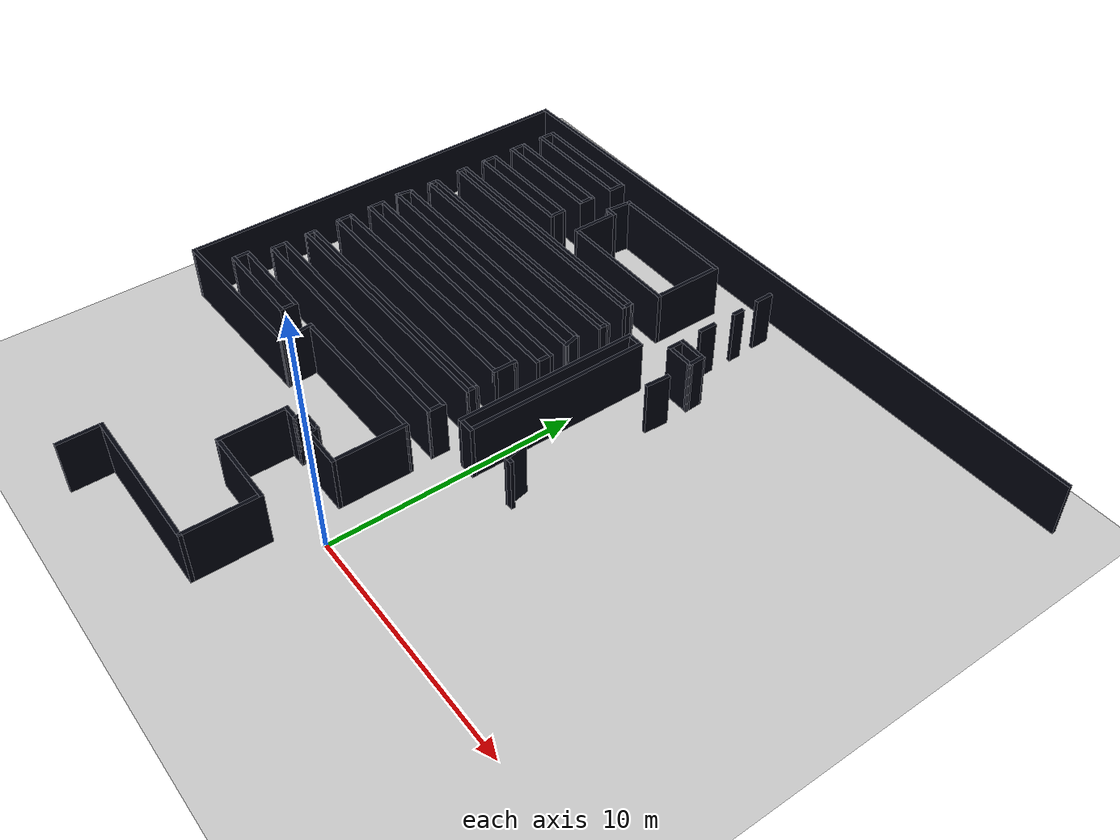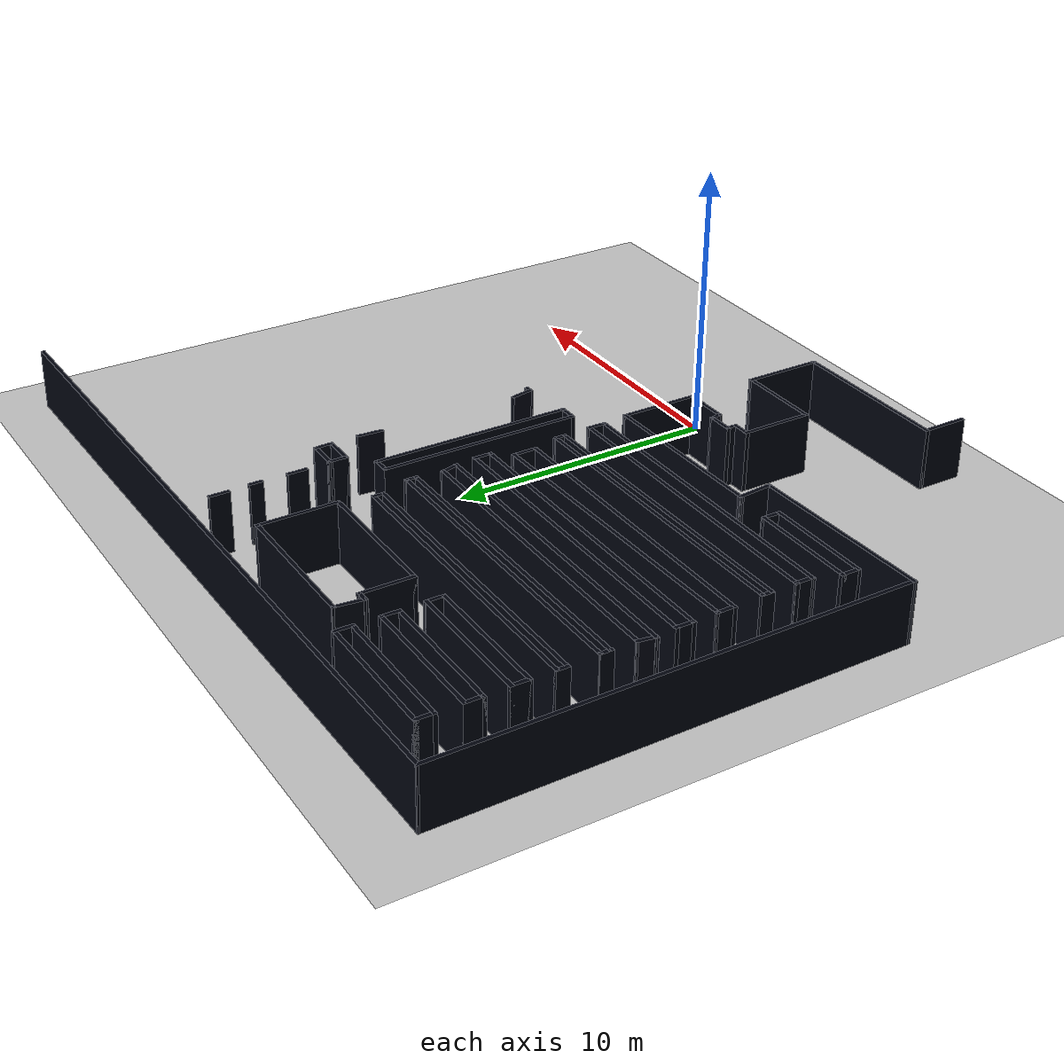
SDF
<sdf version="1.8">
 <world name="CDL_map">
  <model name="ground_plane">
   <static>1</static>
   <link name="link">
    <collision name="collision">
     <geometry><plane><normal>0 0 1</normal><size>100 100</size></plane></geometry>
    </collision>
    <visual name="visual">
     <geometry><plane><normal>0 0 1</normal><size>100 100</size></plane></geometry>
     <material>
      <ambient>0.8 0.8 0.8 1</ambient>
      <diffuse>0.8 0.8 0.8 1</diffuse>
      <specular>0.8 0.8 0.8 1</specular>
     </material>
     <plugin name="__default__" filename="__default__"/>
    </visual>
   </link>
   <plugin name="__default__" filename="__default__"/>
  </model>
  <model name="border">
   <pose>0 0 1 0 0 0</pose>
   <static>true</static>
   <link name="Wall_10">
    <pose>-4.40968 -0.081622 0 0 -0 -1.5708</pose>
    <static>true</static>
    <collision name="Wall_10_Collision"><geometry><box><size>2.75 0.15 2.5</size></box></geometry></collision>
    <visual name="Wall_10_Visual">
     <geometry><box><size>2.75 0.15 2.5</size></box></geometry>
     <material>
      <ambient>0.1 0.1 0.1 1</ambient>
      <diffuse>0 0.01 0.05 1</diffuse>
      <specular>0 0.01 0.05 1</specular>
     </material>
    </visual>
   </link>
   <link name="Wall_100">
    <pose>-12.8016 8.32753 0 0 -0 -1.5708</pose>
    <static>true</static>
    <collision name="Wall_100_Collision"><geometry><box><size>0.75 0.15 2.5</size></box></geometry></collision>
    <visual name="Wall_100_Visual">
     <geometry><box><size>0.75 0.15 2.5</size></box></geometry>
     <material>
      <ambient>0.1 0.1 0.1 1</ambient>
      <diffuse>0 0.01 0.05 1</diffuse>
      <specular>0 0.01 0.05 1</specular>
     </material>
    </visual>
   </link>
   <link name="Wall_101">
    <pose>-7.25164 8.02753 0 0 -0 0</pose>
    <static>true</static>
    <collision name="Wall_101_Collision"><geometry><box><size>11.25 0.15 2.5</size></box></geometry></collision>
    <visual name="Wall_101_Visual">
     <geometry><box><size>11.25 0.15 2.5</size></box></geometry>
     <material>
      <ambient>0.1 0.1 0.1 1</ambient>
      <diffuse>0 0.01 0.05 1</diffuse>
      <specular>0 0.01 0.05 1</specular>
     </material>
    </visual>
   </link>
   <link name="Wall_102">
    <pose>-1.70165 8.45253 0 0 -0 1.5708</pose>
    <static>true</static>
    <collision name="Wall_102_Collision"><geometry><box><size>1 0.15 2.5</size></box></geometry></collision>
    <visual name="Wall_102_Visual">
     <geometry><box><size>1 0.15 2.5</size></box></geometry>
     <material>
      <ambient>0.1 0.1 0.1 1</ambient>
      <diffuse>0 0.01 0.05 1</diffuse>
      <specular>0 0.01 0.05 1</specular>
     </material>
    </visual>
   </link>
   <link name="Wall_103">
    <pose>-7.25164 8.75253 0 0 -0 -3.11907</pose>
    <static>true</static>
    <collision name="Wall_103_Collision"><geometry><box><size>11.2528 0.15 2.5</size></box></geometry></collision>
    <visual name="Wall_103_Visual">
     <geometry><box><size>11.2528 0.15 2.5</size></box></geometry>
     <material>
      <ambient>0.1 0.1 0.1 1</ambient>
      <diffuse>0 0.01 0.05 1</diffuse>
      <specular>0 0.01 0.05 1</specular>
     </material>
    </visual>
   </link>
   <link name="Wall_105">
    <pose>-7.06163 6.98275 0 0 -0 0.010381</pose>
    <static>true</static>
    <collision name="Wall_105_Collision"><geometry><box><size>11.4226 0.15 2.5</size></box></geometry></collision>
    <visual name="Wall_105_Visual">
     <geometry><box><size>11.4226 0.15 2.5</size></box></geometry>
     <material>
      <ambient>0.1 0.1 0.1 1</ambient>
      <diffuse>0 0.01 0.05 1</diffuse>
      <specular>0 0.01 0.05 1</specular>
     </material>
    </visual>
   </link>
   <link name="Wall_106">
    <pose>-1.42564 6.86626 0 0 -0 -1.5708</pose>
    <static>true</static>
    <collision name="Wall_106_Collision"><geometry><box><size>0.5 0.15 2.5</size></box></geometry></collision>
    <visual name="Wall_106_Visual">
     <geometry><box><size>0.5 0.15 2.5</size></box></geometry>
     <material>
      <ambient>0.1 0.1 0.1 1</ambient>
      <diffuse>0 0.01 0.05 1</diffuse>
      <specular>0 0.01 0.05 1</specular>
     </material>
    </visual>
   </link>
   <link name="Wall_107">
    <pose>-7.06163 6.63275 0 0 -0 -3.13121</pose>
    <static>true</static>
    <collision name="Wall_107_Collision"><geometry><box><size>11.4226 0.15 2.5</size></box></geometry></collision>
    <visual name="Wall_107_Visual">
     <geometry><box><size>11.4226 0.15 2.5</size></box></geometry>
     <material>
      <ambient>0.1 0.1 0.1 1</ambient>
      <diffuse>0 0.01 0.05 1</diffuse>
      <specular>0 0.01 0.05 1</specular>
     </material>
    </visual>
   </link>
   <link name="Wall_108">
    <pose>-12.7366 6.74924 0 0 -0 1.5708</pose>
    <static>true</static>
    <collision name="Wall_108_Collision"><geometry><box><size>0.5 0.15 2.5</size></box></geometry></collision>
    <visual name="Wall_108_Visual">
     <geometry><box><size>0.5 0.15 2.5</size></box></geometry>
     <material>
      <ambient>0.1 0.1 0.1 1</ambient>
      <diffuse>0 0.01 0.05 1</diffuse>
      <specular>0 0.01 0.05 1</specular>
     </material>
    </visual>
   </link>
   <link name="Wall_11">
    <pose>-2.85968 -1.38162 0 0 -0 0</pose>
    <static>true</static>
    <collision name="Wall_11_Collision"><geometry><box><size>3.25 0.15 2.5</size></box></geometry></collision>
    <visual name="Wall_11_Visual">
     <geometry><box><size>3.25 0.15 2.5</size></box></geometry>
     <material>
      <ambient>0.1 0.1 0.1 1</ambient>
      <diffuse>0 0.01 0.05 1</diffuse>
      <specular>0 0.01 0.05 1</specular>
     </material>
    </visual>
   </link>
   <link name="Wall_110">
    <pose>-12.7301 5.35002 0 0 -0 -1.59246</pose>
    <static>true</static>
    <collision name="Wall_110_Collision"><geometry><box><size>0.75 0.15 2.5</size></box></geometry></collision>
    <visual name="Wall_110_Visual">
     <geometry><box><size>0.75 0.15 2.5</size></box></geometry>
     <material>
      <ambient>0.1 0.1 0.1 1</ambient>
      <diffuse>0 0.01 0.05 1</diffuse>
      <specular>0 0.01 0.05 1</specular>
     </material>
    </visual>
   </link>
   <link name="Wall_111">
    <pose>-7.06163 5.05002 0 0 -0 0</pose>
    <static>true</static>
    <collision name="Wall_111_Collision"><geometry><box><size>11.5 0.15 2.5</size></box></geometry></collision>
    <visual name="Wall_111_Visual">
     <geometry><box><size>11.5 0.15 2.5</size></box></geometry>
     <material>
      <ambient>0.1 0.1 0.1 1</ambient>
      <diffuse>0 0.01 0.05 1</diffuse>
      <specular>0 0.01 0.05 1</specular>
     </material>
    </visual>
   </link>
   <link name="Wall_112">
    <pose>-1.38013 5.35002 0 0 -0 1.54913</pose>
    <static>true</static>
    <collision name="Wall_112_Collision"><geometry><box><size>0.75 0.15 2.5</size></box></geometry></collision>
    <visual name="Wall_112_Visual">
     <geometry><box><size>0.75 0.15 2.5</size></box></geometry>
     <material>
      <ambient>0.1 0.1 0.1 1</ambient>
      <diffuse>0 0.01 0.05 1</diffuse>
      <specular>0 0.01 0.05 1</specular>
     </material>
    </visual>
   </link>
   <link name="Wall_113">
    <pose>-7.06163 5.65002 0 0 -0 3.14159</pose>
    <static>true</static>
    <collision name="Wall_113_Collision"><geometry><box><size>11.5 0.15 2.5</size></box></geometry></collision>
    <visual name="Wall_113_Visual">
     <geometry><box><size>11.5 0.15 2.5</size></box></geometry>
     <material>
      <ambient>0.1 0.1 0.1 1</ambient>
      <diffuse>0 0.01 0.05 1</diffuse>
      <specular>0 0.01 0.05 1</specular>
     </material>
    </visual>
   </link>
   <link name="Wall_115">
    <pose>-11.1416 4.1499 0 0 -0 0</pose>
    <static>true</static>
    <collision name="Wall_115_Collision"><geometry><box><size>4 0.15 2.5</size></box></geometry></collision>
    <visual name="Wall_115_Visual">
     <geometry><box><size>4 0.15 2.5</size></box></geometry>
     <material>
      <ambient>0.1 0.1 0.1 1</ambient>
      <diffuse>0 0.01 0.05 1</diffuse>
      <specular>0 0.01 0.05 1</specular>
     </material>
    </visual>
   </link>
   <link name="Wall_116">
    <pose>-9.21656 3.8499 0 0 -0 -1.5708</pose>
    <static>true</static>
    <collision name="Wall_116_Collision"><geometry><box><size>0.75 0.15 2.5</size></box></geometry></collision>
    <visual name="Wall_116_Visual">
     <geometry><box><size>0.75 0.15 2.5</size></box></geometry>
     <material>
      <ambient>0.1 0.1 0.1 1</ambient>
      <diffuse>0 0.01 0.05 1</diffuse>
      <specular>0 0.01 0.05 1</specular>
     </material>
    </visual>
   </link>
   <link name="Wall_117">
    <pose>-11.1416 3.5499 0 0 -0 3.14159</pose>
    <static>true</static>
    <collision name="Wall_117_Collision"><geometry><box><size>4 0.15 2.5</size></box></geometry></collision>
    <visual name="Wall_117_Visual">
     <geometry><box><size>4 0.15 2.5</size></box></geometry>
     <material>
      <ambient>0.1 0.1 0.1 1</ambient>
      <diffuse>0 0.01 0.05 1</diffuse>
      <specular>0 0.01 0.05 1</specular>
     </material>
    </visual>
   </link>
   <link name="Wall_118">
    <pose>-13.0666 3.8499 0 0 -0 1.5708</pose>
    <static>true</static>
    <collision name="Wall_118_Collision"><geometry><box><size>0.75 0.15 2.5</size></box></geometry></collision>
    <visual name="Wall_118_Visual">
     <geometry><box><size>0.75 0.15 2.5</size></box></geometry>
     <material>
      <ambient>0.1 0.1 0.1 1</ambient>
      <diffuse>0 0.01 0.05 1</diffuse>
      <specular>0 0.01 0.05 1</specular>
     </material>
    </visual>
   </link>
   <link name="Wall_12">
    <pose>-1.30968 -2.80662 0 0 -0 -1.5708</pose>
    <static>true</static>
    <collision name="Wall_12_Collision"><geometry><box><size>3 0.15 2.5</size></box></geometry></collision>
    <visual name="Wall_12_Visual">
     <geometry><box><size>3 0.15 2.5</size></box></geometry>
     <material>
      <ambient>0.1 0.1 0.1 1</ambient>
      <diffuse>0 0.01 0.05 1</diffuse>
      <specular>0 0.01 0.05 1</specular>
     </material>
    </visual>
   </link>
   <link name="Wall_120">
    <pose>-0.079952 13.0712 0 0 -0 0</pose>
    <static>true</static>
    <collision name="Wall_120_Collision"><geometry><box><size>0.75 0.15 2.5</size></box></geometry></collision>
    <visual name="Wall_120_Visual">
     <geometry><box><size>0.75 0.15 2.5</size></box></geometry>
     <material>
      <ambient>0.1 0.1 0.1 1</ambient>
      <diffuse>0 0.01 0.05 1</diffuse>
      <specular>0 0.01 0.05 1</specular>
     </material>
    </visual>
   </link>
   <link name="Wall_121">
    <pose>0.220048 9.39615 0 0 -0 -1.5708</pose>
    <static>true</static>
    <collision name="Wall_121_Collision"><geometry><box><size>7.5 0.15 2.5</size></box></geometry></collision>
    <visual name="Wall_121_Visual">
     <geometry><box><size>7.5 0.15 2.5</size></box></geometry>
     <material>
      <ambient>0.1 0.1 0.1 1</ambient>
      <diffuse>0 0.01 0.05 1</diffuse>
      <specular>0 0.01 0.05 1</specular>
     </material>
    </visual>
   </link>
   <link name="Wall_122">
    <pose>-0.079952 5.72115 0 0 -0 3.14159</pose>
    <static>true</static>
    <collision name="Wall_122_Collision"><geometry><box><size>0.75 0.15 2.5</size></box></geometry></collision>
    <visual name="Wall_122_Visual">
     <geometry><box><size>0.75 0.15 2.5</size></box></geometry>
     <material>
      <ambient>0.1 0.1 0.1 1</ambient>
      <diffuse>0 0.01 0.05 1</diffuse>
      <specular>0 0.01 0.05 1</specular>
     </material>
    </visual>
   </link>
   <link name="Wall_123">
    <pose>-0.379952 9.39615 0 0 -0 1.5708</pose>
    <static>true</static>
    <collision name="Wall_123_Collision"><geometry><box><size>7.5 0.15 2.5</size></box></geometry></collision>
    <visual name="Wall_123_Visual">
     <geometry><box><size>7.5 0.15 2.5</size></box></geometry>
     <material>
      <ambient>0.1 0.1 0.1 1</ambient>
      <diffuse>0 0.01 0.05 1</diffuse>
      <specular>0 0.01 0.05 1</specular>
     </material>
    </visual>
   </link>
   <link name="Wall_128">
    <pose>0.922962 18.4772 0 0 -0 -1.5708</pose>
    <static>true</static>
    <collision name="Wall_128_Collision"><geometry><box><size>0.75 0.15 2.5</size></box></geometry></collision>
    <visual name="Wall_128_Visual">
     <geometry><box><size>0.75 0.15 2.5</size></box></geometry>
     <material>
      <ambient>0.1 0.1 0.1 1</ambient>
      <diffuse>0 0.01 0.05 1</diffuse>
      <specular>0 0.01 0.05 1</specular>
     </material>
    </visual>
   </link>
   <link name="Wall_13">
    <pose>-4.35968 -4.23162 0 0 -0 3.14159</pose>
    <static>true</static>
    <collision name="Wall_13_Collision"><geometry><box><size>6.25 0.15 2.5</size></box></geometry></collision>
    <visual name="Wall_13_Visual">
     <geometry><box><size>6.25 0.15 2.5</size></box></geometry>
     <material>
      <ambient>0.1 0.1 0.1 1</ambient>
      <diffuse>0 0.01 0.05 1</diffuse>
      <specular>0 0.01 0.05 1</specular>
     </material>
    </visual>
   </link>
   <link name="Wall_133">
    <pose>0.974678 17.1489 0 0 -0 1.5708</pose>
    <static>true</static>
    <collision name="Wall_133_Collision"><geometry><box><size>0.5 0.15 2.5</size></box></geometry></collision>
    <visual name="Wall_133_Visual">
     <geometry><box><size>0.5 0.15 2.5</size></box></geometry>
     <material>
      <ambient>0.1 0.1 0.1 1</ambient>
      <diffuse>0 0.01 0.05 1</diffuse>
      <specular>0 0.01 0.05 1</specular>
     </material>
    </visual>
   </link>
   <link name="Wall_135">
    <pose>0.961749 15.6534 0 0 -0 -1.5708</pose>
    <static>true</static>
    <collision name="Wall_135_Collision"><geometry><box><size>0.75 0.15 2.5</size></box></geometry></collision>
    <visual name="Wall_135_Visual">
     <geometry><box><size>0.75 0.15 2.5</size></box></geometry>
     <material>
      <ambient>0.1 0.1 0.1 1</ambient>
      <diffuse>0 0.01 0.05 1</diffuse>
      <specular>0 0.01 0.05 1</specular>
     </material>
    </visual>
   </link>
   <link name="Wall_14">
    <pose>-7.40968 -5.03162 0 0 -0 -1.5708</pose>
    <static>true</static>
    <collision name="Wall_14_Collision"><geometry><box><size>1.75 0.15 2.5</size></box></geometry></collision>
    <visual name="Wall_14_Visual">
     <geometry><box><size>1.75 0.15 2.5</size></box></geometry>
     <material>
      <ambient>0.1 0.1 0.1 1</ambient>
      <diffuse>0 0.01 0.05 1</diffuse>
      <specular>0 0.01 0.05 1</specular>
     </material>
    </visual>
   </link>
   <link name="Wall_144">
    <pose>1.01346 14.1278 0 0 -0 -1.5708</pose>
    <static>true</static>
    <collision name="Wall_144_Collision"><geometry><box><size>0.75 0.15 2.5</size></box></geometry></collision>
    <visual name="Wall_144_Visual">
     <geometry><box><size>0.75 0.15 2.5</size></box></geometry>
     <material>
      <ambient>0.1 0.1 0.1 1</ambient>
      <diffuse>0 0.01 0.05 1</diffuse>
      <specular>0 0.01 0.05 1</specular>
     </material>
    </visual>
   </link>
   <link name="Wall_145">
    <pose>1.56346 13.8278 0 0 -0 0</pose>
    <static>true</static>
    <collision name="Wall_145_Collision"><geometry><box><size>1.25 0.15 2.5</size></box></geometry></collision>
    <visual name="Wall_145_Visual">
     <geometry><box><size>1.25 0.15 2.5</size></box></geometry>
     <material>
      <ambient>0.1 0.1 0.1 1</ambient>
      <diffuse>0 0.01 0.05 1</diffuse>
      <specular>0 0.01 0.05 1</specular>
     </material>
    </visual>
   </link>
   <link name="Wall_146">
    <pose>2.10152 14.1251 0 0 -0 1.61096</pose>
    <static>true</static>
    <collision name="Wall_146_Collision">
     <geometry><box><size>0.744967 0.15 2.5</size></box></geometry>
    </collision>
    <visual name="Wall_146_Visual">
     <geometry><box><size>0.744967 0.15 2.5</size></box></geometry>
     <material>
      <ambient>0.1 0.1 0.1 1</ambient>
      <diffuse>0 0.01 0.05 1</diffuse>
      <specular>0 0.01 0.05 1</specular>
     </material>
    </visual>
   </link>
   <link name="Wall_147">
    <pose>1.55152 14.4251 0 0 -0 3.13647</pose>
    <static>true</static>
    <collision name="Wall_147_Collision"><geometry><box><size>1.22617 0.15 2.5</size></box></geometry></collision>
    <visual name="Wall_147_Visual">
     <geometry><box><size>1.22617 0.15 2.5</size></box></geometry>
     <material>
      <ambient>0.1 0.1 0.1 1</ambient>
      <diffuse>0 0.01 0.05 1</diffuse>
      <specular>0 0.01 0.05 1</specular>
     </material>
    </visual>
   </link>
   <link name="Wall_180">
    <pose>2.09499 12.3578 0 0 -0 -1.63109</pose>
    <static>true</static>
    <collision name="Wall_180_Collision">
     <geometry><box><size>0.996511 0.15 2.5</size></box></geometry>
    </collision>
    <visual name="Wall_180_Visual">
     <geometry><box><size>0.996511 0.15 2.5</size></box></geometry>
     <material>
      <ambient>0.1 0.1 0.1 1</ambient>
      <diffuse>0 0.01 0.05 1</diffuse>
      <specular>0 0.01 0.05 1</specular>
     </material>
    </visual>
   </link>
   <link name="Wall_2">
    <pose>-7.72041 3.37557 0 0 -0 1.66712</pose>
    <static>true</static>
    <collision name="Wall_2_Collision"><geometry><box><size>1.38679 0.15 2.5</size></box></geometry></collision>
    <visual name="Wall_2_Visual">
     <geometry><box><size>1.38679 0.15 2.5</size></box></geometry>
     <material>
      <ambient>0.1 0.1 0.1 1</ambient>
      <diffuse>0 0.01 0.05 1</diffuse>
      <specular>0 0.01 0.05 1</specular>
     </material>
    </visual>
   </link>
   <link name="Wall_217">
    <pose>2.1398 5.95702 0 0 -0 -3.13063</pose>
    <static>true</static>
    <collision name="Wall_217_Collision">
     <geometry><box><size>0.339127 0.15 2.5</size></box></geometry>
    </collision>
    <visual name="Wall_217_Visual">
     <geometry><box><size>0.339127 0.15 2.5</size></box></geometry>
     <material>
      <ambient>0.1 0.1 0.1 1</ambient>
      <diffuse>0 0.01 0.05 1</diffuse>
      <specular>0 0.01 0.05 1</specular>
     </material>
    </visual>
   </link>
   <link name="Wall_218">
    <pose>1.97231 6.32891 0 0 -0 1.76819</pose>
    <static>true</static>
    <collision name="Wall_218_Collision">
     <geometry><box><size>0.914853 0.15 2.5</size></box></geometry>
    </collision>
    <visual name="Wall_218_Visual">
     <geometry><box><size>0.914853 0.15 2.5</size></box></geometry>
     <material>
      <ambient>0.1 0.1 0.1 1</ambient>
      <diffuse>0 0.01 0.05 1</diffuse>
      <specular>0 0.01 0.05 1</specular>
     </material>
    </visual>
   </link>
   <link name="Wall_3">
    <pose>-4.52449 4.0357 0 0 -0 0.013701</pose>
    <static>true</static>
    <collision name="Wall_3_Collision"><geometry><box><size>6.66106 0.15 2.5</size></box></geometry></collision>
    <visual name="Wall_3_Visual">
     <geometry><box><size>6.66106 0.15 2.5</size></box></geometry>
     <material>
      <ambient>0.1 0.1 0.1 1</ambient>
      <diffuse>0 0.01 0.05 1</diffuse>
      <specular>0 0.01 0.05 1</specular>
     </material>
    </visual>
   </link>
   <link name="Wall_4">
    <pose>-1.26909 2.6553 0 0 -0 -1.5708</pose>
    <static>true</static>
    <collision name="Wall_4_Collision"><geometry><box><size>3 0.15 2.5</size></box></geometry></collision>
    <visual name="Wall_4_Visual">
     <geometry><box><size>3 0.15 2.5</size></box></geometry>
     <material>
      <ambient>0.1 0.1 0.1 1</ambient>
      <diffuse>0 0.01 0.05 1</diffuse>
      <specular>0 0.01 0.05 1</specular>
     </material>
    </visual>
   </link>
   <link name="Wall_45">
    <pose>-11.0441 2.64109 0 0 -0 -3.10645</pose>
    <static>true</static>
    <collision name="Wall_45_Collision"><geometry><box><size>6.92049 0.15 2.5</size></box></geometry></collision>
    <visual name="Wall_45_Visual">
     <geometry><box><size>6.92049 0.15 2.5</size></box></geometry>
     <material>
      <ambient>0.1 0.1 0.1 1</ambient>
      <diffuse>0 0.01 0.05 1</diffuse>
      <specular>0 0.01 0.05 1</specular>
     </material>
    </visual>
   </link>
   <link name="Wall_46">
    <pose>-14.4867 11.0563 0 0 -0 1.57777</pose>
    <static>true</static>
    <collision name="Wall_46_Collision"><geometry><box><size>17.2187 0.15 2.5</size></box></geometry></collision>
    <visual name="Wall_46_Visual">
     <geometry><box><size>17.2187 0.15 2.5</size></box></geometry>
     <material>
      <ambient>0.1 0.1 0.1 1</ambient>
      <diffuse>0 0.01 0.05 1</diffuse>
      <specular>0 0.01 0.05 1</specular>
     </material>
    </visual>
   </link>
   <link name="Wall_47">
    <pose>-0.347594 19.7577 0 0 -0 0.011779</pose>
    <static>true</static>
    <collision name="Wall_47_Collision"><geometry><box><size>28.5492 0.15 2.5</size></box></geometry></collision>
    <visual name="Wall_47_Visual">
     <geometry><box><size>28.5492 0.15 2.5</size></box></geometry>
     <material>
      <ambient>0.1 0.1 0.1 1</ambient>
      <diffuse>0 0.01 0.05 1</diffuse>
      <specular>0 0.01 0.05 1</specular>
     </material>
    </visual>
   </link>
   <link name="Wall_5">
    <pose>-2.06909 1.2303 0 0 -0 3.14159</pose>
    <static>true</static>
    <collision name="Wall_5_Collision"><geometry><box><size>1.75 0.15 2.5</size></box></geometry></collision>
    <visual name="Wall_5_Visual">
     <geometry><box><size>1.75 0.15 2.5</size></box></geometry>
     <material>
      <ambient>0.1 0.1 0.1 1</ambient>
      <diffuse>0 0.01 0.05 1</diffuse>
      <specular>0 0.01 0.05 1</specular>
     </material>
    </visual>
   </link>
   <link name="Wall_58">
    <pose>-10.4157 18.7433 0 0 -0 0</pose>
    <static>true</static>
    <collision name="Wall_58_Collision"><geometry><box><size>5 0.15 2.5</size></box></geometry></collision>
    <visual name="Wall_58_Visual">
     <geometry><box><size>5 0.15 2.5</size></box></geometry>
     <material>
      <ambient>0.1 0.1 0.1 1</ambient>
      <diffuse>0 0.01 0.05 1</diffuse>
      <specular>0 0.01 0.05 1</specular>
     </material>
    </visual>
   </link>
   <link name="Wall_59">
    <pose>-7.99065 18.4433 0 0 -0 -1.5708</pose>
    <static>true</static>
    <collision name="Wall_59_Collision"><geometry><box><size>0.75 0.15 2.5</size></box></geometry></collision>
    <visual name="Wall_59_Visual">
     <geometry><box><size>0.75 0.15 2.5</size></box></geometry>
     <material>
      <ambient>0.1 0.1 0.1 1</ambient>
      <diffuse>0 0.01 0.05 1</diffuse>
      <specular>0 0.01 0.05 1</specular>
     </material>
    </visual>
   </link>
   <link name="Wall_6">
    <pose>-2.91438 1.39934 0 0 -0 1.8326</pose>
    <static>true</static>
    <collision name="Wall_6_Collision"><geometry><box><size>0.5 0.15 2.5</size></box></geometry></collision>
    <visual name="Wall_6_Visual">
     <geometry><box><size>0.5 0.15 2.5</size></box></geometry>
     <material>
      <ambient>0.1 0.1 0.1 1</ambient>
      <diffuse>0 0.01 0.05 1</diffuse>
      <specular>0 0.01 0.05 1</specular>
     </material>
    </visual>
   </link>
   <link name="Wall_60">
    <pose>-10.4157 18.1433 0 0 -0 3.14159</pose>
    <static>true</static>
    <collision name="Wall_60_Collision"><geometry><box><size>5 0.15 2.5</size></box></geometry></collision>
    <visual name="Wall_60_Visual">
     <geometry><box><size>5 0.15 2.5</size></box></geometry>
     <material>
      <ambient>0.1 0.1 0.1 1</ambient>
      <diffuse>0 0.01 0.05 1</diffuse>
      <specular>0 0.01 0.05 1</specular>
     </material>
    </visual>
   </link>
   <link name="Wall_61">
    <pose>-12.8407 18.4433 0 0 -0 1.5708</pose>
    <static>true</static>
    <collision name="Wall_61_Collision"><geometry><box><size>0.75 0.15 2.5</size></box></geometry></collision>
    <visual name="Wall_61_Visual">
     <geometry><box><size>0.75 0.15 2.5</size></box></geometry>
     <material>
      <ambient>0.1 0.1 0.1 1</ambient>
      <diffuse>0 0.01 0.05 1</diffuse>
      <specular>0 0.01 0.05 1</specular>
     </material>
    </visual>
   </link>
   <link name="Wall_63">
    <pose>-10.4287 17.209 0 0 -0 0</pose>
    <static>true</static>
    <collision name="Wall_63_Collision"><geometry><box><size>5 0.15 2.5</size></box></geometry></collision>
    <visual name="Wall_63_Visual">
     <geometry><box><size>5 0.15 2.5</size></box></geometry>
     <material>
      <ambient>0.1 0.1 0.1 1</ambient>
      <diffuse>0 0.01 0.05 1</diffuse>
      <specular>0 0.01 0.05 1</specular>
     </material>
    </visual>
   </link>
   <link name="Wall_64">
    <pose>-8.00365 16.909 0 0 -0 -1.5708</pose>
    <static>true</static>
    <collision name="Wall_64_Collision"><geometry><box><size>0.75 0.15 2.5</size></box></geometry></collision>
    <visual name="Wall_64_Visual">
     <geometry><box><size>0.75 0.15 2.5</size></box></geometry>
     <material>
      <ambient>0.1 0.1 0.1 1</ambient>
      <diffuse>0 0.01 0.05 1</diffuse>
      <specular>0 0.01 0.05 1</specular>
     </material>
    </visual>
   </link>
   <link name="Wall_65">
    <pose>-10.4287 16.609 0 0 -0 3.14159</pose>
    <static>true</static>
    <collision name="Wall_65_Collision"><geometry><box><size>5 0.15 2.5</size></box></geometry></collision>
    <visual name="Wall_65_Visual">
     <geometry><box><size>5 0.15 2.5</size></box></geometry>
     <material>
      <ambient>0.1 0.1 0.1 1</ambient>
      <diffuse>0 0.01 0.05 1</diffuse>
      <specular>0 0.01 0.05 1</specular>
     </material>
    </visual>
   </link>
   <link name="Wall_66">
    <pose>-12.8537 16.909 0 0 -0 1.5708</pose>
    <static>true</static>
    <collision name="Wall_66_Collision"><geometry><box><size>0.75 0.15 2.5</size></box></geometry></collision>
    <visual name="Wall_66_Visual">
     <geometry><box><size>0.75 0.15 2.5</size></box></geometry>
     <material>
      <ambient>0.1 0.1 0.1 1</ambient>
      <diffuse>0 0.01 0.05 1</diffuse>
      <specular>0 0.01 0.05 1</specular>
     </material>
    </visual>
   </link>
   <link name="Wall_68">
    <pose>-4.17162 18.2102 0 0 -0 0</pose>
    <static>true</static>
    <collision name="Wall_68_Collision"><geometry><box><size>5.5 0.15 2.5</size></box></geometry></collision>
    <visual name="Wall_68_Visual">
     <geometry><box><size>5.5 0.15 2.5</size></box></geometry>
     <material>
      <ambient>0.1 0.1 0.1 1</ambient>
      <diffuse>0 0.01 0.05 1</diffuse>
      <specular>0 0.01 0.05 1</specular>
     </material>
    </visual>
   </link>
   <link name="Wall_69">
    <pose>-1.49662 16.7852 0 0 -0 -1.5708</pose>
    <static>true</static>
    <collision name="Wall_69_Collision"><geometry><box><size>3 0.15 2.5</size></box></geometry></collision>
    <visual name="Wall_69_Visual">
     <geometry><box><size>3 0.15 2.5</size></box></geometry>
     <material>
      <ambient>0.1 0.1 0.1 1</ambient>
      <diffuse>0 0.01 0.05 1</diffuse>
      <specular>0 0.01 0.05 1</specular>
     </material>
    </visual>
   </link>
   <link name="Wall_7">
    <pose>-3.38468 1.56838 0 0 -0 3.14159</pose>
    <static>true</static>
    <collision name="Wall_7_Collision"><geometry><box><size>1 0.15 2.5</size></box></geometry></collision>
    <visual name="Wall_7_Visual">
     <geometry><box><size>1 0.15 2.5</size></box></geometry>
     <material>
      <ambient>0.1 0.1 0.1 1</ambient>
      <diffuse>0 0.01 0.05 1</diffuse>
      <specular>0 0.01 0.05 1</specular>
     </material>
    </visual>
   </link>
   <link name="Wall_70">
    <pose>-4.04662 15.3602 0 0 -0 3.14159</pose>
    <static>true</static>
    <collision name="Wall_70_Collision"><geometry><box><size>5.25 0.15 2.5</size></box></geometry></collision>
    <visual name="Wall_70_Visual">
     <geometry><box><size>5.25 0.15 2.5</size></box></geometry>
     <material>
      <ambient>0.1 0.1 0.1 1</ambient>
      <diffuse>0 0.01 0.05 1</diffuse>
      <specular>0 0.01 0.05 1</specular>
     </material>
    </visual>
   </link>
   <link name="Wall_71">
    <pose>-6.59662 16.2852 0 0 -0 1.5708</pose>
    <static>true</static>
    <collision name="Wall_71_Collision"><geometry><box><size>2 0.15 2.5</size></box></geometry></collision>
    <visual name="Wall_71_Visual">
     <geometry><box><size>2 0.15 2.5</size></box></geometry>
     <material>
      <ambient>0.1 0.1 0.1 1</ambient>
      <diffuse>0 0.01 0.05 1</diffuse>
      <specular>0 0.01 0.05 1</specular>
     </material>
    </visual>
   </link>
   <link name="Wall_72">
    <pose>-6.77162 17.2102 0 0 -0 3.14159</pose>
    <static>true</static>
    <collision name="Wall_72_Collision"><geometry><box><size>0.5 0.15 2.5</size></box></geometry></collision>
    <visual name="Wall_72_Visual">
     <geometry><box><size>0.5 0.15 2.5</size></box></geometry>
     <material>
      <ambient>0.1 0.1 0.1 1</ambient>
      <diffuse>0 0.01 0.05 1</diffuse>
      <specular>0 0.01 0.05 1</specular>
     </material>
    </visual>
   </link>
   <link name="Wall_73">
    <pose>-6.89662 17.7102 0 0 -0 1.47113</pose>
    <static>true</static>
    <collision name="Wall_73_Collision"><geometry><box><size>1.15499 0.15 2.5</size></box></geometry></collision>
    <visual name="Wall_73_Visual">
     <geometry><box><size>1.15499 0.15 2.5</size></box></geometry>
     <material>
      <ambient>0.1 0.1 0.1 1</ambient>
      <diffuse>0 0.01 0.05 1</diffuse>
      <specular>0 0.01 0.05 1</specular>
     </material>
    </visual>
   </link>
   <link name="Wall_75">
    <pose>-10.4026 15.7007 0 0 -0 0</pose>
    <static>true</static>
    <collision name="Wall_75_Collision"><geometry><box><size>5 0.15 2.5</size></box></geometry></collision>
    <visual name="Wall_75_Visual">
     <geometry><box><size>5 0.15 2.5</size></box></geometry>
     <material>
      <ambient>0.1 0.1 0.1 1</ambient>
      <diffuse>0 0.01 0.05 1</diffuse>
      <specular>0 0.01 0.05 1</specular>
     </material>
    </visual>
   </link>
   <link name="Wall_76">
    <pose>-7.97765 15.4007 0 0 -0 -1.5708</pose>
    <static>true</static>
    <collision name="Wall_76_Collision"><geometry><box><size>0.75 0.15 2.5</size></box></geometry></collision>
    <visual name="Wall_76_Visual">
     <geometry><box><size>0.75 0.15 2.5</size></box></geometry>
     <material>
      <ambient>0.1 0.1 0.1 1</ambient>
      <diffuse>0 0.01 0.05 1</diffuse>
      <specular>0 0.01 0.05 1</specular>
     </material>
    </visual>
   </link>
   <link name="Wall_77">
    <pose>-10.4026 15.1007 0 0 -0 3.14159</pose>
    <static>true</static>
    <collision name="Wall_77_Collision"><geometry><box><size>5 0.15 2.5</size></box></geometry></collision>
    <visual name="Wall_77_Visual">
     <geometry><box><size>5 0.15 2.5</size></box></geometry>
     <material>
      <ambient>0.1 0.1 0.1 1</ambient>
      <diffuse>0 0.01 0.05 1</diffuse>
      <specular>0 0.01 0.05 1</specular>
     </material>
    </visual>
   </link>
   <link name="Wall_78">
    <pose>-12.8276 15.4007 0 0 -0 1.5708</pose>
    <static>true</static>
    <collision name="Wall_78_Collision"><geometry><box><size>0.75 0.15 2.5</size></box></geometry></collision>
    <visual name="Wall_78_Visual">
     <geometry><box><size>0.75 0.15 2.5</size></box></geometry>
     <material>
      <ambient>0.1 0.1 0.1 1</ambient>
      <diffuse>0 0.01 0.05 1</diffuse>
      <specular>0 0.01 0.05 1</specular>
     </material>
    </visual>
   </link>
   <link name="Wall_8">
    <pose>-3.80968 1.39338 0 0 -0 -1.5708</pose>
    <static>true</static>
    <collision name="Wall_8_Collision"><geometry><box><size>0.5 0.15 2.5</size></box></geometry></collision>
    <visual name="Wall_8_Visual">
     <geometry><box><size>0.5 0.15 2.5</size></box></geometry>
     <material>
      <ambient>0.1 0.1 0.1 1</ambient>
      <diffuse>0 0.01 0.05 1</diffuse>
      <specular>0 0.01 0.05 1</specular>
     </material>
    </visual>
   </link>
   <link name="Wall_80">
    <pose>-7.30365 14.2185 0 0 -0 0</pose>
    <static>true</static>
    <collision name="Wall_80_Collision"><geometry><box><size>11.25 0.15 2.5</size></box></geometry></collision>
    <visual name="Wall_80_Visual">
     <geometry><box><size>11.25 0.15 2.5</size></box></geometry>
     <material>
      <ambient>0.1 0.1 0.1 1</ambient>
      <diffuse>0 0.01 0.05 1</diffuse>
      <specular>0 0.01 0.05 1</specular>
     </material>
    </visual>
   </link>
   <link name="Wall_81">
    <pose>-1.75365 14.0435 0 0 -0 -1.5708</pose>
    <static>true</static>
    <collision name="Wall_81_Collision"><geometry><box><size>0.5 0.15 2.5</size></box></geometry></collision>
    <visual name="Wall_81_Visual">
     <geometry><box><size>0.5 0.15 2.5</size></box></geometry>
     <material>
      <ambient>0.1 0.1 0.1 1</ambient>
      <diffuse>0 0.01 0.05 1</diffuse>
      <specular>0 0.01 0.05 1</specular>
     </material>
    </visual>
   </link>
   <link name="Wall_82">
    <pose>-7.30365 13.8685 0 0 -0 3.14159</pose>
    <static>true</static>
    <collision name="Wall_82_Collision"><geometry><box><size>11.25 0.15 2.5</size></box></geometry></collision>
    <visual name="Wall_82_Visual">
     <geometry><box><size>11.25 0.15 2.5</size></box></geometry>
     <material>
      <ambient>0.1 0.1 0.1 1</ambient>
      <diffuse>0 0.01 0.05 1</diffuse>
      <specular>0 0.01 0.05 1</specular>
     </material>
    </visual>
   </link>
   <link name="Wall_83">
    <pose>-12.8537 14.0435 0 0 -0 1.5708</pose>
    <static>true</static>
    <collision name="Wall_83_Collision"><geometry><box><size>0.5 0.15 2.5</size></box></geometry></collision>
    <visual name="Wall_83_Visual">
     <geometry><box><size>0.5 0.15 2.5</size></box></geometry>
     <material>
      <ambient>0.1 0.1 0.1 1</ambient>
      <diffuse>0 0.01 0.05 1</diffuse>
      <specular>0 0.01 0.05 1</specular>
     </material>
    </visual>
   </link>
   <link name="Wall_85">
    <pose>-7.06813 12.7622 0 0 -0 0.004556</pose>
    <static>true</static>
    <collision name="Wall_85_Collision"><geometry><box><size>11.5651 0.15 2.5</size></box></geometry></collision>
    <visual name="Wall_85_Visual">
     <geometry><box><size>11.5651 0.15 2.5</size></box></geometry>
     <material>
      <ambient>0.1 0.1 0.1 1</ambient>
      <diffuse>0 0.01 0.05 1</diffuse>
      <specular>0 0.01 0.05 1</specular>
     </material>
    </visual>
   </link>
   <link name="Wall_86">
    <pose>-1.36063 12.6262 0 0 -0 -1.5708</pose>
    <static>true</static>
    <collision name="Wall_86_Collision"><geometry><box><size>0.5 0.15 2.5</size></box></geometry></collision>
    <visual name="Wall_86_Visual">
     <geometry><box><size>0.5 0.15 2.5</size></box></geometry>
     <material>
      <ambient>0.1 0.1 0.1 1</ambient>
      <diffuse>0 0.01 0.05 1</diffuse>
      <specular>0 0.01 0.05 1</specular>
     </material>
    </visual>
   </link>
   <link name="Wall_87">
    <pose>-7.06813 12.4122 0 0 -0 -3.13704</pose>
    <static>true</static>
    <collision name="Wall_87_Collision"><geometry><box><size>11.5651 0.15 2.5</size></box></geometry></collision>
    <visual name="Wall_87_Visual">
     <geometry><box><size>11.5651 0.15 2.5</size></box></geometry>
     <material>
      <ambient>0.1 0.1 0.1 1</ambient>
      <diffuse>0 0.01 0.05 1</diffuse>
      <specular>0 0.01 0.05 1</specular>
     </material>
    </visual>
   </link>
   <link name="Wall_88">
    <pose>-12.8016 12.5352 0 0 -0 1.5708</pose>
    <static>true</static>
    <collision name="Wall_88_Collision"><geometry><box><size>0.5 0.15 2.5</size></box></geometry></collision>
    <visual name="Wall_88_Visual">
     <geometry><box><size>0.5 0.15 2.5</size></box></geometry>
     <material>
      <ambient>0.1 0.1 0.1 1</ambient>
      <diffuse>0 0.01 0.05 1</diffuse>
      <specular>0 0.01 0.05 1</specular>
     </material>
    </visual>
   </link>
   <link name="Wall_9">
    <pose>-4.10968 1.21838 0 0 -0 3.14159</pose>
    <static>true</static>
    <collision name="Wall_9_Collision"><geometry><box><size>0.75 0.15 2.5</size></box></geometry></collision>
    <visual name="Wall_9_Visual">
     <geometry><box><size>0.75 0.15 2.5</size></box></geometry>
     <material>
      <ambient>0.1 0.1 0.1 1</ambient>
      <diffuse>0 0.01 0.05 1</diffuse>
      <specular>0 0.01 0.05 1</specular>
     </material>
    </visual>
   </link>
   <link name="Wall_90">
    <pose>-7.15265 11.475 0 0 -0 0</pose>
    <static>true</static>
    <collision name="Wall_90_Collision"><geometry><box><size>11.5 0.15 2.5</size></box></geometry></collision>
    <visual name="Wall_90_Visual">
     <geometry><box><size>11.5 0.15 2.5</size></box></geometry>
     <material>
      <ambient>0.1 0.1 0.1 1</ambient>
      <diffuse>0 0.01 0.05 1</diffuse>
      <specular>0 0.01 0.05 1</specular>
     </material>
    </visual>
   </link>
   <link name="Wall_91">
    <pose>-1.4 11.1852 0 0 -0 -1.309</pose>
    <static>true</static>
    <collision name="Wall_91_Collision"><geometry><box><size>0.75 0.15 2.5</size></box></geometry></collision>
    <visual name="Wall_91_Visual">
     <geometry><box><size>0.75 0.15 2.5</size></box></geometry>
     <material>
      <ambient>0.1 0.1 0.1 1</ambient>
      <diffuse>0 0.01 0.05 1</diffuse>
      <specular>0 0.01 0.05 1</specular>
     </material>
    </visual>
   </link>
   <link name="Wall_92">
    <pose>-7.12236 10.8955 0 0 -0 3.14159</pose>
    <static>true</static>
    <collision name="Wall_92_Collision"><geometry><box><size>11.75 0.15 2.5</size></box></geometry></collision>
    <visual name="Wall_92_Visual">
     <geometry><box><size>11.75 0.15 2.5</size></box></geometry>
     <material>
      <ambient>0.1 0.1 0.1 1</ambient>
      <diffuse>0 0.01 0.05 1</diffuse>
      <specular>0 0.01 0.05 1</specular>
     </material>
    </visual>
   </link>
   <link name="Wall_93">
    <pose>-12.875 11.1852 0 0 -0 1.40881</pose>
    <static>true</static>
    <collision name="Wall_93_Collision"><geometry><box><size>0.737243 0.15 2.5</size></box></geometry></collision>
    <visual name="Wall_93_Visual">
     <geometry><box><size>0.737243 0.15 2.5</size></box></geometry>
     <material>
      <ambient>0.1 0.1 0.1 1</ambient>
      <diffuse>0 0.01 0.05 1</diffuse>
      <specular>0 0.01 0.05 1</specular>
     </material>
    </visual>
   </link>
   <link name="Wall_95">
    <pose>-7.02765 10.1228 0 0 -0 0</pose>
    <static>true</static>
    <collision name="Wall_95_Collision"><geometry><box><size>11.75 0.15 2.5</size></box></geometry></collision>
    <visual name="Wall_95_Visual">
     <geometry><box><size>11.75 0.15 2.5</size></box></geometry>
     <material>
      <ambient>0.1 0.1 0.1 1</ambient>
      <diffuse>0 0.01 0.05 1</diffuse>
      <specular>0 0.01 0.05 1</specular>
     </material>
    </visual>
   </link>
   <link name="Wall_96">
    <pose>-1.22765 9.82279 0 0 -0 -1.5708</pose>
    <static>true</static>
    <collision name="Wall_96_Collision"><geometry><box><size>0.75 0.15 2.5</size></box></geometry></collision>
    <visual name="Wall_96_Visual">
     <geometry><box><size>0.75 0.15 2.5</size></box></geometry>
     <material>
      <ambient>0.1 0.1 0.1 1</ambient>
      <diffuse>0 0.01 0.05 1</diffuse>
      <specular>0 0.01 0.05 1</specular>
     </material>
    </visual>
   </link>
   <link name="Wall_97">
    <pose>-7.02765 9.52279 0 0 -0 3.14159</pose>
    <static>true</static>
    <collision name="Wall_97_Collision"><geometry><box><size>11.75 0.15 2.5</size></box></geometry></collision>
    <visual name="Wall_97_Visual">
     <geometry><box><size>11.75 0.15 2.5</size></box></geometry>
     <material>
      <ambient>0.1 0.1 0.1 1</ambient>
      <diffuse>0 0.01 0.05 1</diffuse>
      <specular>0 0.01 0.05 1</specular>
     </material>
    </visual>
   </link>
   <link name="Wall_98">
    <pose>-12.8276 9.82279 0 0 -0 1.5708</pose>
    <static>true</static>
    <collision name="Wall_98_Collision"><geometry><box><size>0.75 0.15 2.5</size></box></geometry></collision>
    <visual name="Wall_98_Visual">
     <geometry><box><size>0.75 0.15 2.5</size></box></geometry>
     <material>
      <ambient>0.1 0.1 0.1 1</ambient>
      <diffuse>0 0.01 0.05 1</diffuse>
      <specular>0 0.01 0.05 1</specular>
     </material>
    </visual>
   </link>
  </model>
 </world>
</sdf>
